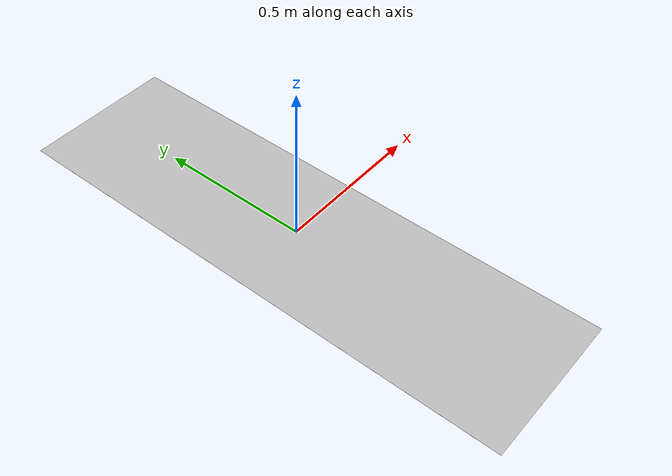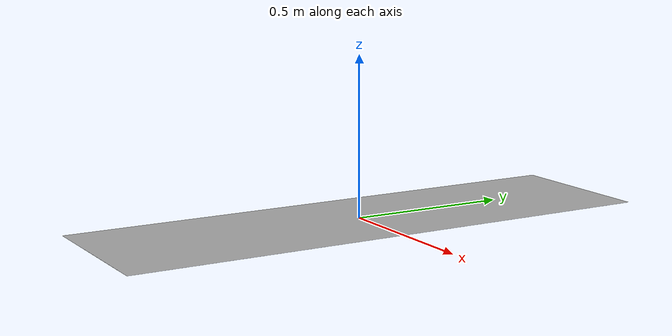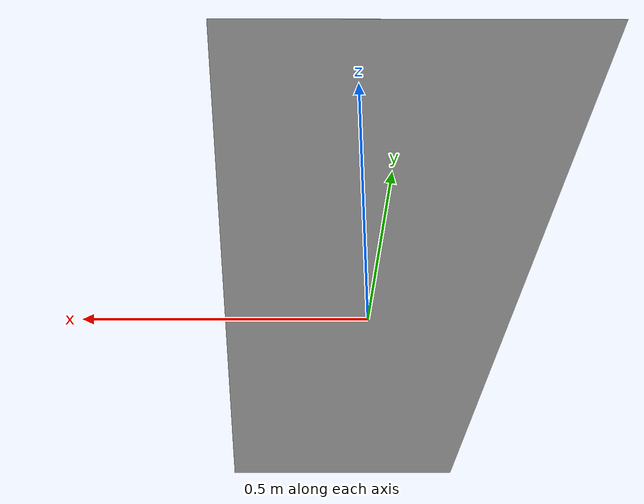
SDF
<?xml version="1.0" encoding="UTF-8"?>
<sdf version="1.4">
   <model name="silhouette_castle">
      <static>true</static>
      <link name="link">
         <collision name="collision">
            <geometry>
                <box>
                  <size>0.5 1.7 0.0001</size>
               </box>
            </geometry>
            <surface>
               <friction>
                  <ode>
                     <mu>100</mu>
                     <mu2>50</mu2>
                  </ode>
               </friction>
            </surface>
         </collision>
         <visual name="visual">
            <cast_shadows>false</cast_shadows>
            <geometry>
                <box>
                  <size>0.5 1.7 0.0001</size>
               </box>
            </geometry>
            <material>
               <script>
                  <uri>model://silhouette_castle/materials/scripts</uri>
                  <uri>model://silhouette_castle/materials/textures/</uri>
                  <name>silhouette2/Image</name>
               </script>
            </material>
         </visual>
      </link>
   </model>
</sdf>
